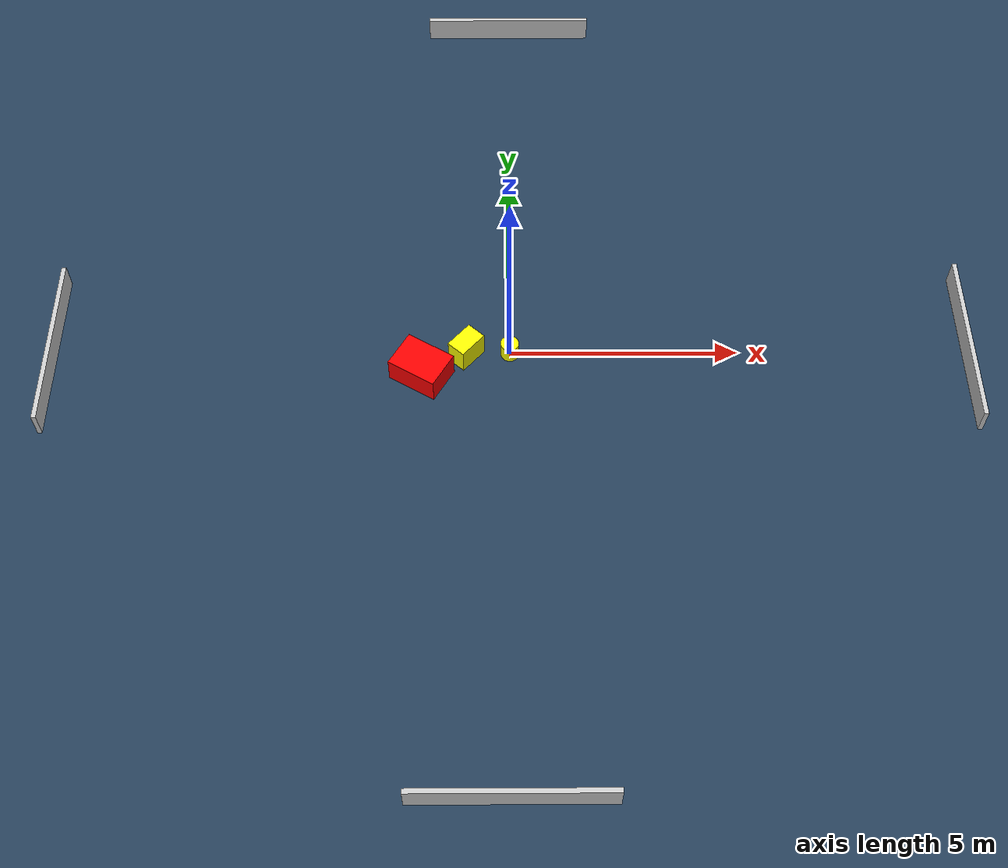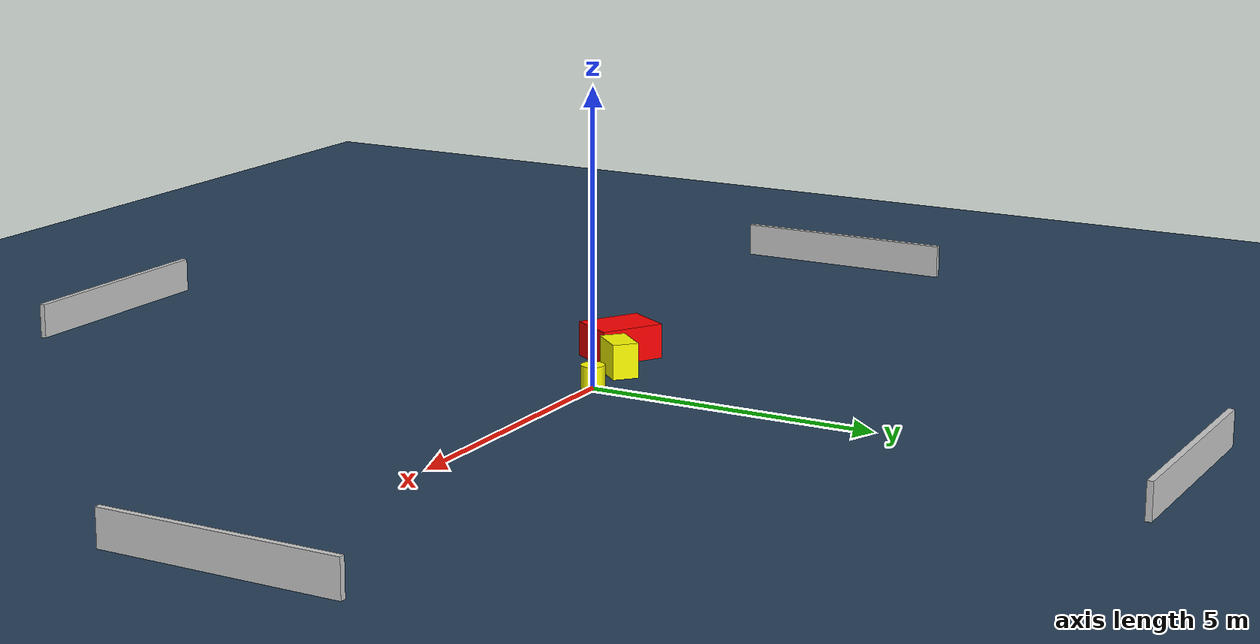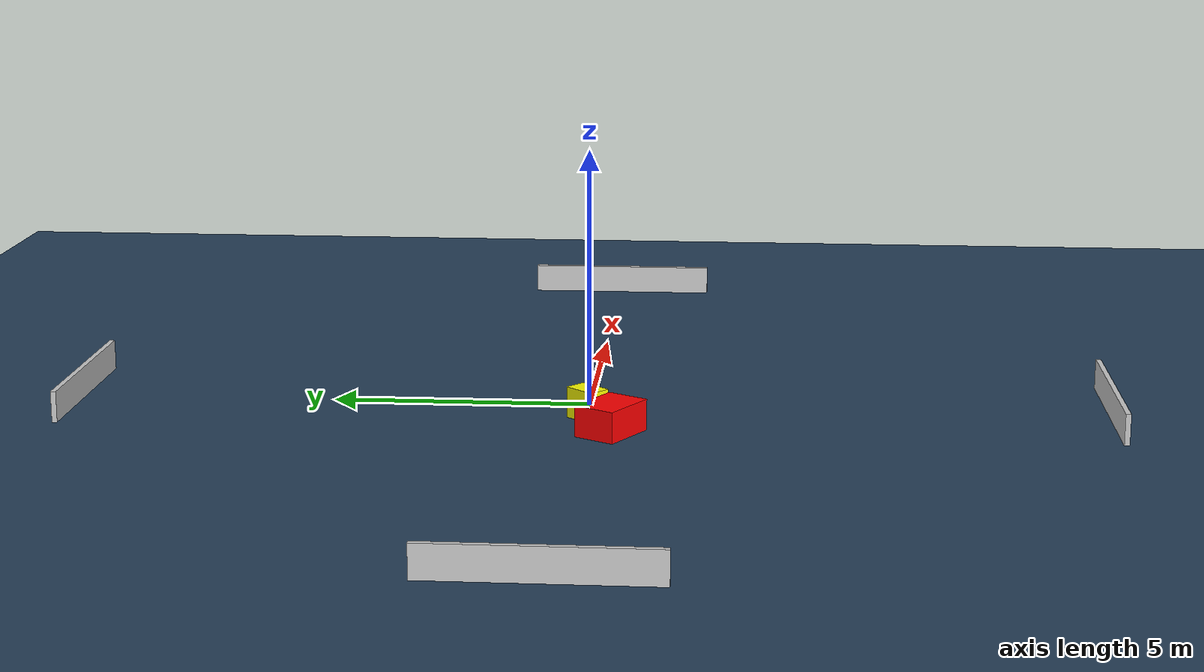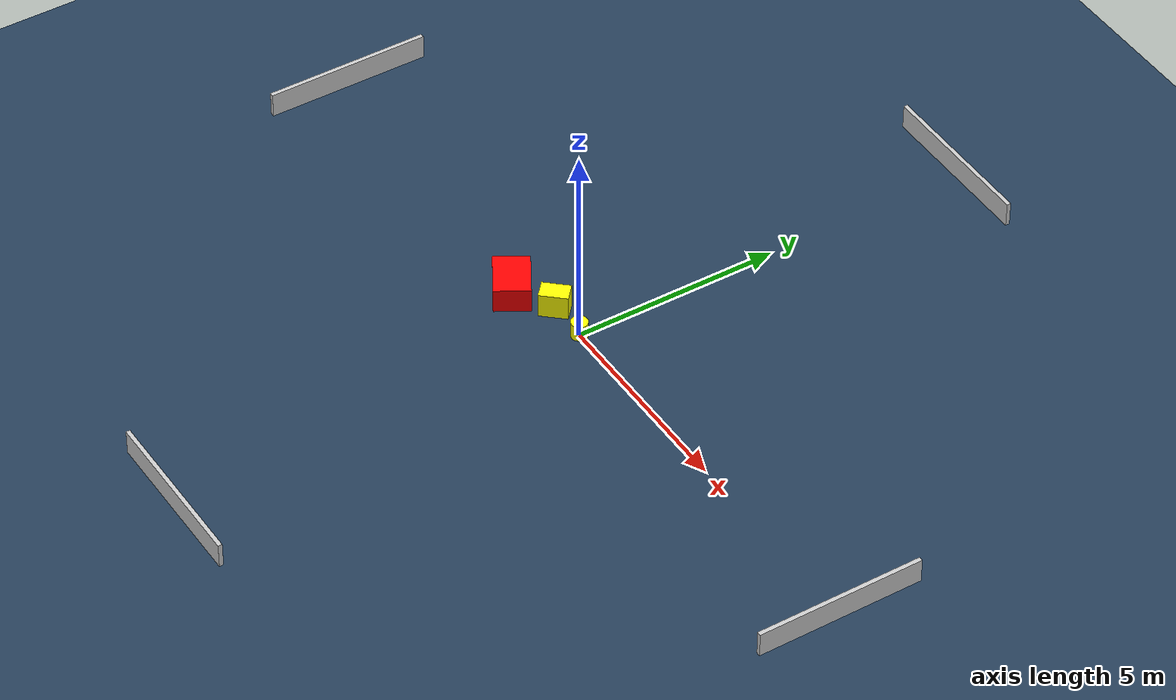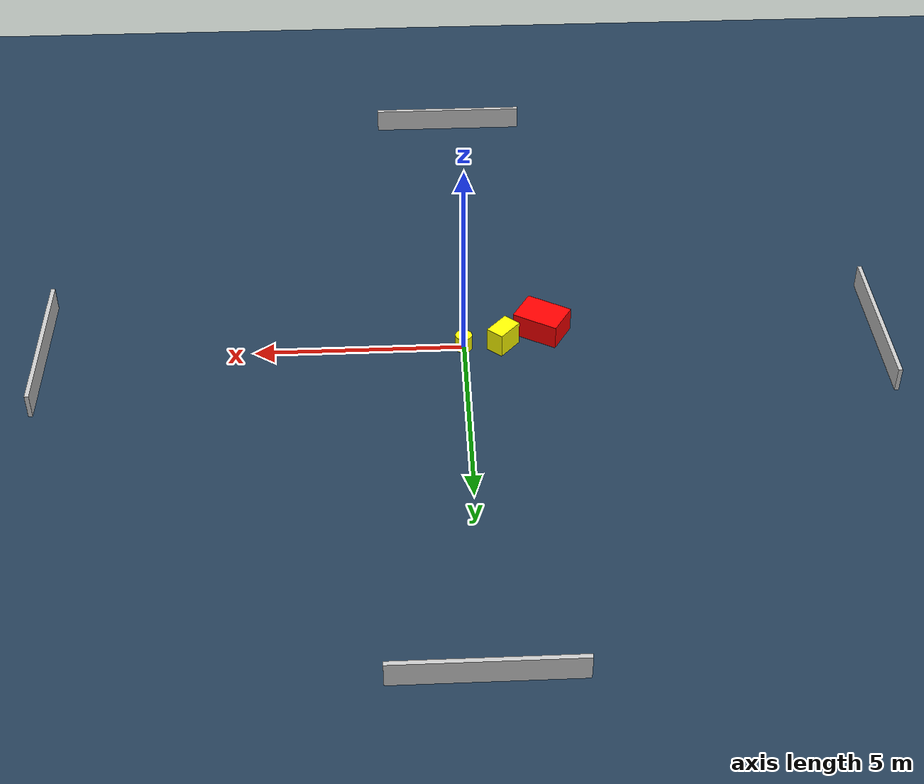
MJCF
<?xml version="1.0" ?>
<mujoco model="generated_environment">
  <option timestep="0.01" integrator="RK4" cone="elliptic"/>
  <default>
    <geom density="1"/>
  </default>
  <asset>
    <texture builtin="gradient" height="3072" name="skybox" rgb1="0.3 0.5 0.7" rgb2="0 0 0" type="skybox" width="512"/>
    <texture builtin="checker" height="300" name="groundplane" rgb1="0.2 0.3 0.4" rgb2="0.1 0.2 0.3" type="2d" width="300"/>
    <material name="groundplane" reflectance="0.2" texrepeat="5 5" texture="groundplane"/>
  </asset>
  <worldbody>
    <light dir="0 0 -1" directional="true" pos="0 0 1.5"/>
    <geom condim="3" friction="0.5 0.005 0.001" material="groundplane" name="floor" pos="0 0 0" size="0 0 0.05" type="plane"/>
    <body name="walls">
      <geom name="wall_1" condim="4" pos="-10.0 0.0 0.3" rgba="0.800000011920929 0.800000011920929 0.800000011920929 1.0" size="0.05 2.0 0.3" type="box"/>
      <geom name="wall_2" condim="4" pos="10.0 0.0 0.3" rgba="0.800000011920929 0.800000011920929 0.800000011920929 1.0" size="0.05 2.0 0.3" type="box"/>
      <geom name="wall_3" condim="4" pos="0.0 -10.0 0.3" rgba="0.800000011920929 0.800000011920929 0.800000011920929 1.0" size="2.0 0.05 0.3" type="box"/>
      <geom name="wall_4" condim="4" pos="0.0 10.0 0.3" rgba="0.800000011920929 0.800000011920929 0.800000011920929 1.0" size="2.0 0.05 0.3" type="box"/>
    </body>
    <body name="robot">
      <joint name="joint_x" type="slide" pos="0 0 0" axis="1 0 0"/>
      <joint name="joint_y" type="slide" pos="0 0 0" axis="0 1 0"/>
      <geom name="robot" type="cylinder" pos="0.0 0.0 0.2" size="0.2 0.2 0.0" mass="5.0" friction="1.0 0.005 0.0001" condim="4" rgba="1.0 1.0 0.0 1.0"/>
    </body>
    <body name="obstacle_1_movable">
      <geom name="obstacle_1_movable" condim="4" pos="-0.9496477685063529 -0.0366911918595881 0.3" euler="0 0 228.1017649344354" friction="0.0 0.005 0.001" rgba="1.0 1.0 0.0 1.0" size="0.33788877381969296 0.22209929635297632 0.3" type="box" mass="0.1"/>
      <joint type="free"/>
    </body>
    <body name="obstacle_2_static">
      <geom name="obstacle_2_static" condim="4" pos="-1.9180854861611176 -0.5441888869307707 0.3" euler="0 0 59.29887459642171" friction="0.0 0.005 0.001" rgba="1.0 0.0 0.0 1.0" size="0.4234393137632235 0.5692034516166413 0.3" type="box"/>
    </body>
  </worldbody>
  <actuator>
    <motor name="actuator_x" joint="joint_x" gear="1" ctrlrange="-1 1"/>
    <motor name="actuator_y" joint="joint_y" gear="1" ctrlrange="-1 1"/>
  </actuator>
</mujoco>
